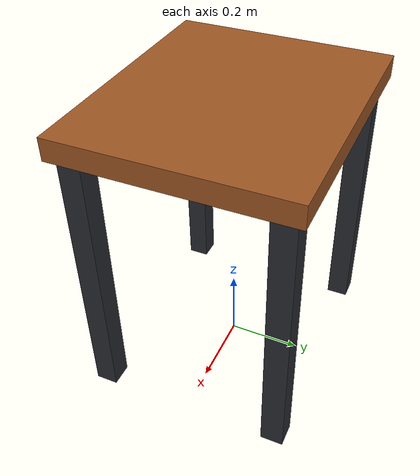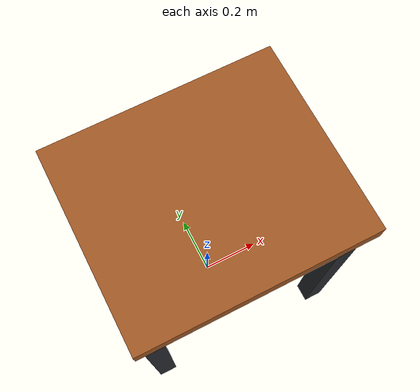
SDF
<?xml version="1.0"?>
<sdf version="1.8">
  <model name="table">
    <static>true</static>
    <link name="table_link">
      <visual name="tabletop_visual">
        <pose>0 0 0.77 0 0 0</pose>
        <geometry><box><size>0.70 0.60 0.06</size></box></geometry>
        <material>
          <ambient>0.42 0.22 0.09 1</ambient>
          <diffuse>0.62 0.34 0.14 1</diffuse>
          <specular>0.18 0.18 0.18 1</specular>
        </material>
      </visual>
      <collision name="tabletop_collision">
        <pose>0 0 0.77 0 0 0</pose>
        <geometry><box><size>0.70 0.60 0.06</size></box></geometry>
      </collision>

      <visual name="leg_front_left_visual">
        <pose>0.30 0.25 0.37 0 0 0</pose>
        <geometry><box><size>0.06 0.06 0.74</size></box></geometry>
        <material><diffuse>0.16 0.17 0.19 1</diffuse></material>
      </visual>
      <collision name="leg_front_left_collision">
        <pose>0.30 0.25 0.37 0 0 0</pose>
        <geometry><box><size>0.06 0.06 0.74</size></box></geometry>
      </collision>

      <visual name="leg_front_right_visual">
        <pose>0.30 -0.25 0.37 0 0 0</pose>
        <geometry><box><size>0.06 0.06 0.74</size></box></geometry>
        <material><diffuse>0.16 0.17 0.19 1</diffuse></material>
      </visual>
      <collision name="leg_front_right_collision">
        <pose>0.30 -0.25 0.37 0 0 0</pose>
        <geometry><box><size>0.06 0.06 0.74</size></box></geometry>
      </collision>

      <visual name="leg_back_left_visual">
        <pose>-0.30 0.25 0.37 0 0 0</pose>
        <geometry><box><size>0.06 0.06 0.74</size></box></geometry>
        <material><diffuse>0.16 0.17 0.19 1</diffuse></material>
      </visual>
      <collision name="leg_back_left_collision">
        <pose>-0.30 0.25 0.37 0 0 0</pose>
        <geometry><box><size>0.06 0.06 0.74</size></box></geometry>
      </collision>

      <visual name="leg_back_right_visual">
        <pose>-0.30 -0.25 0.37 0 0 0</pose>
        <geometry><box><size>0.06 0.06 0.74</size></box></geometry>
        <material><diffuse>0.16 0.17 0.19 1</diffuse></material>
      </visual>
      <collision name="leg_back_right_collision">
        <pose>-0.30 -0.25 0.37 0 0 0</pose>
        <geometry><box><size>0.06 0.06 0.74</size></box></geometry>
      </collision>
    </link>
  </model>
</sdf>
